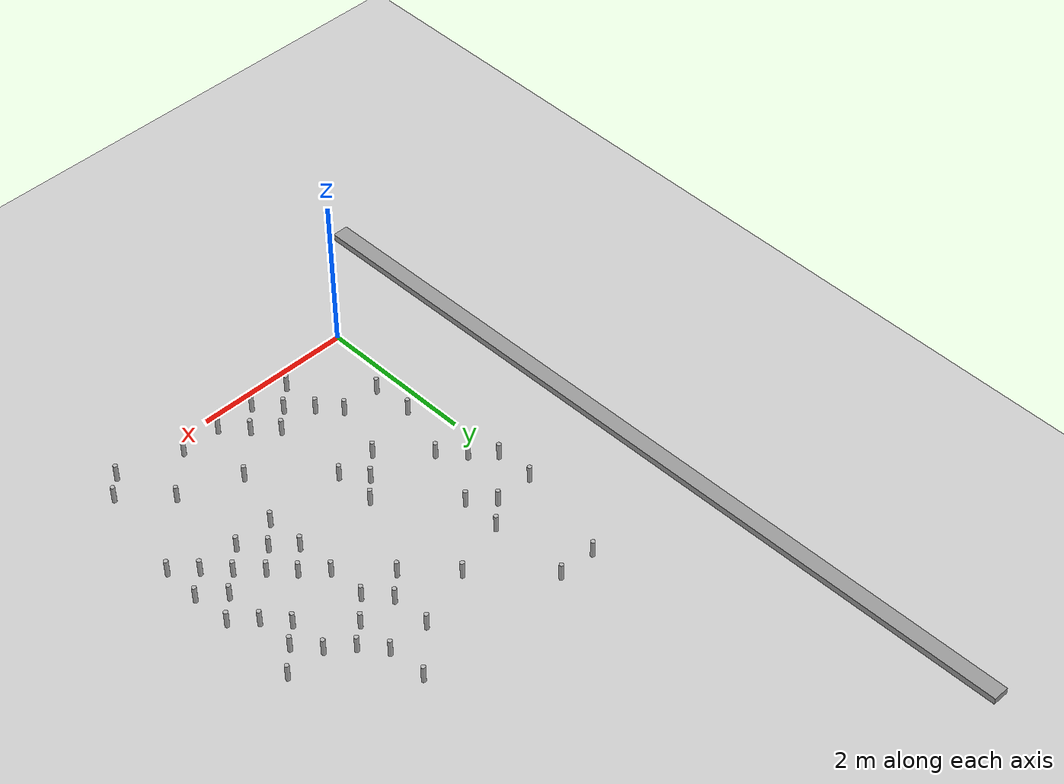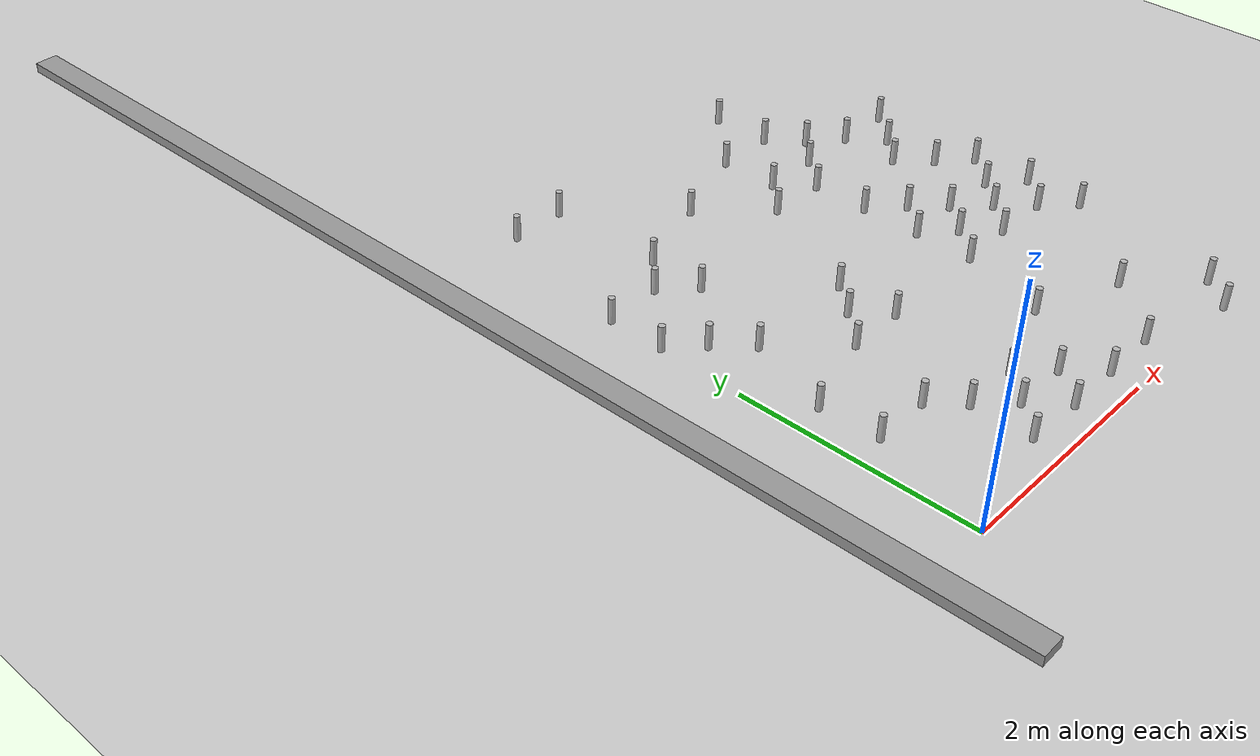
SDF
<sdf version="1.6">
 <world name="default">
  <model name="ground_plane">
   <static>1</static>
   <link name="link">
    <collision name="collision">
     <geometry><plane><normal>0 0 1</normal><size>100 100</size></plane></geometry>
     <surface><friction><ode><mu>100</mu><mu2>50</mu2></ode></friction></surface>
    </collision>
    <visual name="visual">
     <cast_shadows>0</cast_shadows>
     <geometry><plane><normal>0 0 1</normal><size>100 100</size></plane></geometry>
     <material>
      <script><uri>file://media/materials/scripts/gazebo.material</uri><name>Gazebo/Grey</name></script>
     </material>
    </visual>
   </link>
  </model>
  <model name="wall1">
   <static>1</static>
   <link name="link">
    <pose>0 0 0.42 0 -0 0</pose>
    <collision name="collision"><geometry><box><size>10 0.2 0.084</size></box></geometry></collision>
    <visual name="visual">
     <cast_shadows>0</cast_shadows>
     <geometry><box><size>10 0.2 0.084</size></box></geometry>
     <material>
      <script>
       <uri>model://grey_wall/materials/scripts</uri>
       <uri>model://grey_wall/materials/textures</uri>
       <name>vrc/grey_wall</name>
      </script>
     </material>
    </visual>
   </link>
   <pose>-1 4.0 0 0 -0 -1.55905</pose>
  </model>
  <model name="can1.01.72601428327">
   <link name="link">
    <pose>0 0 0.115 0 -0 0</pose>
    <inertial>
     <mass>0.39</mass>
     <inertia><ixx>0.00058</ixx><ixy>0</ixy><ixz>0</ixz><iyy>0.00058</iyy><iyz>0</iyz><izz>0.00019</izz></inertia>
    </inertial>
    <collision name="collision">
     <geometry><cylinder><radius>0.0275</radius><length>0.23</length></cylinder></geometry>
    </collision>
    <visual name="visual">
     <geometry><cylinder><radius>0.0275</radius><length>0.23</length></cylinder></geometry>
     <material>
      <script>
       <uri>model://beer/materials/scripts</uri>
       <uri>model://beer/materials/textures</uri>
       <name>Beer/Diffuse</name>
      </script>
     </material>
    </visual>
   </link>
   <pose>1.0 1.72601428327 -2e-06 1e-06 0 -9.5e-05</pose>
  </model>
  <model name="can1.752240229540.5">
   <link name="link">
    <pose>0 0 0.115 0 -0 0</pose>
    <inertial>
     <mass>0.39</mass>
     <inertia><ixx>0.00058</ixx><ixy>0</ixy><ixz>0</ixz><iyy>0.00058</iyy><iyz>0</iyz><izz>0.00019</izz></inertia>
    </inertial>
    <collision name="collision">
     <geometry><cylinder><radius>0.0275</radius><length>0.23</length></cylinder></geometry>
    </collision>
    <visual name="visual">
     <geometry><cylinder><radius>0.0275</radius><length>0.23</length></cylinder></geometry>
     <material>
      <script>
       <uri>model://beer/materials/scripts</uri>
       <uri>model://beer/materials/textures</uri>
       <name>Beer/Diffuse</name>
      </script>
     </material>
    </visual>
   </link>
   <pose>1.75224022954 0.5 -2e-06 1e-06 0 -9.5e-05</pose>
  </model>
  <model name="can3.50.240996124034">
   <link name="link">
    <pose>0 0 0.115 0 -0 0</pose>
    <inertial>
     <mass>0.39</mass>
     <inertia><ixx>0.00058</ixx><ixy>0</ixy><ixz>0</ixz><iyy>0.00058</iyy><iyz>0</iyz><izz>0.00019</izz></inertia>
    </inertial>
    <collision name="collision">
     <geometry><cylinder><radius>0.0275</radius><length>0.23</length></cylinder></geometry>
    </collision>
    <visual name="visual">
     <geometry><cylinder><radius>0.0275</radius><length>0.23</length></cylinder></geometry>
     <material>
      <script>
       <uri>model://beer/materials/scripts</uri>
       <uri>model://beer/materials/textures</uri>
       <name>Beer/Diffuse</name>
      </script>
     </material>
    </visual>
   </link>
   <pose>3.5 0.240996124034 -2e-06 1e-06 0 -9.5e-05</pose>
  </model>
  <model name="can1.00.244068706249">
   <link name="link">
    <pose>0 0 0.115 0 -0 0</pose>
    <inertial>
     <mass>0.39</mass>
     <inertia><ixx>0.00058</ixx><ixy>0</ixy><ixz>0</ixz><iyy>0.00058</iyy><iyz>0</iyz><izz>0.00019</izz></inertia>
    </inertial>
    <collision name="collision">
     <geometry><cylinder><radius>0.0275</radius><length>0.23</length></cylinder></geometry>
    </collision>
    <visual name="visual">
     <geometry><cylinder><radius>0.0275</radius><length>0.23</length></cylinder></geometry>
     <material>
      <script>
       <uri>model://beer/materials/scripts</uri>
       <uri>model://beer/materials/textures</uri>
       <name>Beer/Diffuse</name>
      </script>
     </material>
    </visual>
   </link>
   <pose>1.0 0.244068706249 -2e-06 1e-06 0 -9.5e-05</pose>
  </model>
  <model name="can0.7762787411673.5">
   <link name="link">
    <pose>0 0 0.115 0 -0 0</pose>
    <inertial>
     <mass>0.39</mass>
     <inertia><ixx>0.00058</ixx><ixy>0</ixy><ixz>0</ixz><iyy>0.00058</iyy><iyz>0</iyz><izz>0.00019</izz></inertia>
    </inertial>
    <collision name="collision">
     <geometry><cylinder><radius>0.0275</radius><length>0.23</length></cylinder></geometry>
    </collision>
    <visual name="visual">
     <geometry><cylinder><radius>0.0275</radius><length>0.23</length></cylinder></geometry>
     <material>
      <script>
       <uri>model://beer/materials/scripts</uri>
       <uri>model://beer/materials/textures</uri>
       <name>Beer/Diffuse</name>
      </script>
     </material>
    </visual>
   </link>
   <pose>0.776278741167 3.5 -2e-06 1e-06 0 -9.5e-05</pose>
  </model>
  <model name="can3.03.71716802057">
   <link name="link">
    <pose>0 0 0.115 0 -0 0</pose>
    <inertial>
     <mass>0.39</mass>
     <inertia><ixx>0.00058</ixx><ixy>0</ixy><ixz>0</ixz><iyy>0.00058</iyy><iyz>0</iyz><izz>0.00019</izz></inertia>
    </inertial>
    <collision name="collision">
     <geometry><cylinder><radius>0.0275</radius><length>0.23</length></cylinder></geometry>
    </collision>
    <visual name="visual">
     <geometry><cylinder><radius>0.0275</radius><length>0.23</length></cylinder></geometry>
     <material>
      <script>
       <uri>model://beer/materials/scripts</uri>
       <uri>model://beer/materials/textures</uri>
       <name>Beer/Diffuse</name>
      </script>
     </material>
    </visual>
   </link>
   <pose>3.0 3.71716802057 -2e-06 1e-06 0 -9.5e-05</pose>
  </model>
  <model name="can3.760414593241.5">
   <link name="link">
    <pose>0 0 0.115 0 -0 0</pose>
    <inertial>
     <mass>0.39</mass>
     <inertia><ixx>0.00058</ixx><ixy>0</ixy><ixz>0</ixz><iyy>0.00058</iyy><iyz>0</iyz><izz>0.00019</izz></inertia>
    </inertial>
    <collision name="collision">
     <geometry><cylinder><radius>0.0275</radius><length>0.23</length></cylinder></geometry>
    </collision>
    <visual name="visual">
     <geometry><cylinder><radius>0.0275</radius><length>0.23</length></cylinder></geometry>
     <material>
      <script>
       <uri>model://beer/materials/scripts</uri>
       <uri>model://beer/materials/textures</uri>
       <name>Beer/Diffuse</name>
      </script>
     </material>
    </visual>
   </link>
   <pose>3.76041459324 1.5 -2e-06 1e-06 0 -9.5e-05</pose>
  </model>
  <model name="can3.758568706892.5">
   <link name="link">
    <pose>0 0 0.115 0 -0 0</pose>
    <inertial>
     <mass>0.39</mass>
     <inertia><ixx>0.00058</ixx><ixy>0</ixy><ixz>0</ixz><iyy>0.00058</iyy><iyz>0</iyz><izz>0.00019</izz></inertia>
    </inertial>
    <collision name="collision">
     <geometry><cylinder><radius>0.0275</radius><length>0.23</length></cylinder></geometry>
    </collision>
    <visual name="visual">
     <geometry><cylinder><radius>0.0275</radius><length>0.23</length></cylinder></geometry>
     <material>
      <script>
       <uri>model://beer/materials/scripts</uri>
       <uri>model://beer/materials/textures</uri>
       <name>Beer/Diffuse</name>
      </script>
     </material>
    </visual>
   </link>
   <pose>3.75856870689 2.5 -2e-06 1e-06 0 -9.5e-05</pose>
  </model>
  <model name="can2.75748403822.0">
   <link name="link">
    <pose>0 0 0.115 0 -0 0</pose>
    <inertial>
     <mass>0.39</mass>
     <inertia><ixx>0.00058</ixx><ixy>0</ixy><ixz>0</ixz><iyy>0.00058</iyy><iyz>0</iyz><izz>0.00019</izz></inertia>
    </inertial>
    <collision name="collision">
     <geometry><cylinder><radius>0.0275</radius><length>0.23</length></cylinder></geometry>
    </collision>
    <visual name="visual">
     <geometry><cylinder><radius>0.0275</radius><length>0.23</length></cylinder></geometry>
     <material>
      <script>
       <uri>model://beer/materials/scripts</uri>
       <uri>model://beer/materials/textures</uri>
       <name>Beer/Diffuse</name>
      </script>
     </material>
    </visual>
   </link>
   <pose>2.7574840382 2.0 -2e-06 1e-06 0 -9.5e-05</pose>
  </model>
  <model name="can3.02.24979325446">
   <link name="link">
    <pose>0 0 0.115 0 -0 0</pose>
    <inertial>
     <mass>0.39</mass>
     <inertia><ixx>0.00058</ixx><ixy>0</ixy><ixz>0</ixz><iyy>0.00058</iyy><iyz>0</iyz><izz>0.00019</izz></inertia>
    </inertial>
    <collision name="collision">
     <geometry><cylinder><radius>0.0275</radius><length>0.23</length></cylinder></geometry>
    </collision>
    <visual name="visual">
     <geometry><cylinder><radius>0.0275</radius><length>0.23</length></cylinder></geometry>
     <material>
      <script>
       <uri>model://beer/materials/scripts</uri>
       <uri>model://beer/materials/textures</uri>
       <name>Beer/Diffuse</name>
      </script>
     </material>
    </visual>
   </link>
   <pose>3.0 2.24979325446 -2e-06 1e-06 0 -9.5e-05</pose>
  </model>
  <model name="can0.2849297225011.0">
   <link name="link">
    <pose>0 0 0.115 0 -0 0</pose>
    <inertial>
     <mass>0.39</mass>
     <inertia><ixx>0.00058</ixx><ixy>0</ixy><ixz>0</ixz><iyy>0.00058</iyy><iyz>0</iyz><izz>0.00019</izz></inertia>
    </inertial>
    <collision name="collision">
     <geometry><cylinder><radius>0.0275</radius><length>0.23</length></cylinder></geometry>
    </collision>
    <visual name="visual">
     <geometry><cylinder><radius>0.0275</radius><length>0.23</length></cylinder></geometry>
     <material>
      <script>
       <uri>model://beer/materials/scripts</uri>
       <uri>model://beer/materials/textures</uri>
       <name>Beer/Diffuse</name>
      </script>
     </material>
    </visual>
   </link>
   <pose>0.284929722501 1.0 -2e-06 1e-06 0 -9.5e-05</pose>
  </model>
  <model name="can3.780668719752.0">
   <link name="link">
    <pose>0 0 0.115 0 -0 0</pose>
    <inertial>
     <mass>0.39</mass>
     <inertia><ixx>0.00058</ixx><ixy>0</ixy><ixz>0</ixz><iyy>0.00058</iyy><iyz>0</iyz><izz>0.00019</izz></inertia>
    </inertial>
    <collision name="collision">
     <geometry><cylinder><radius>0.0275</radius><length>0.23</length></cylinder></geometry>
    </collision>
    <visual name="visual">
     <geometry><cylinder><radius>0.0275</radius><length>0.23</length></cylinder></geometry>
     <material>
      <script>
       <uri>model://beer/materials/scripts</uri>
       <uri>model://beer/materials/textures</uri>
       <name>Beer/Diffuse</name>
      </script>
     </material>
    </visual>
   </link>
   <pose>3.78066871975 2.0 -2e-06 1e-06 0 -9.5e-05</pose>
  </model>
  <model name="can2.52.22568749587">
   <link name="link">
    <pose>0 0 0.115 0 -0 0</pose>
    <inertial>
     <mass>0.39</mass>
     <inertia><ixx>0.00058</ixx><ixy>0</ixy><ixz>0</ixz><iyy>0.00058</iyy><iyz>0</iyz><izz>0.00019</izz></inertia>
    </inertial>
    <collision name="collision">
     <geometry><cylinder><radius>0.0275</radius><length>0.23</length></cylinder></geometry>
    </collision>
    <visual name="visual">
     <geometry><cylinder><radius>0.0275</radius><length>0.23</length></cylinder></geometry>
     <material>
      <script>
       <uri>model://beer/materials/scripts</uri>
       <uri>model://beer/materials/textures</uri>
       <name>Beer/Diffuse</name>
      </script>
     </material>
    </visual>
   </link>
   <pose>2.5 2.22568749587 -2e-06 1e-06 0 -9.5e-05</pose>
  </model>
  <model name="can3.27002835113.0">
   <link name="link">
    <pose>0 0 0.115 0 -0 0</pose>
    <inertial>
     <mass>0.39</mass>
     <inertia><ixx>0.00058</ixx><ixy>0</ixy><ixz>0</ixz><iyy>0.00058</iyy><iyz>0</iyz><izz>0.00019</izz></inertia>
    </inertial>
    <collision name="collision">
     <geometry><cylinder><radius>0.0275</radius><length>0.23</length></cylinder></geometry>
    </collision>
    <visual name="visual">
     <geometry><cylinder><radius>0.0275</radius><length>0.23</length></cylinder></geometry>
     <material>
      <script>
       <uri>model://beer/materials/scripts</uri>
       <uri>model://beer/materials/textures</uri>
       <name>Beer/Diffuse</name>
      </script>
     </material>
    </visual>
   </link>
   <pose>3.2700283511 3.0 -2e-06 1e-06 0 -9.5e-05</pose>
  </model>
  <model name="can3.767635746763.5">
   <link name="link">
    <pose>0 0 0.115 0 -0 0</pose>
    <inertial>
     <mass>0.39</mass>
     <inertia><ixx>0.00058</ixx><ixy>0</ixy><ixz>0</ixz><iyy>0.00058</iyy><iyz>0</iyz><izz>0.00019</izz></inertia>
    </inertial>
    <collision name="collision">
     <geometry><cylinder><radius>0.0275</radius><length>0.23</length></cylinder></geometry>
    </collision>
    <visual name="visual">
     <geometry><cylinder><radius>0.0275</radius><length>0.23</length></cylinder></geometry>
     <material>
      <script>
       <uri>model://beer/materials/scripts</uri>
       <uri>model://beer/materials/textures</uri>
       <name>Beer/Diffuse</name>
      </script>
     </material>
    </visual>
   </link>
   <pose>3.76763574676 3.5 -2e-06 1e-06 0 -9.5e-05</pose>
  </model>
  <model name="can1.50.743371191487">
   <link name="link">
    <pose>0 0 0.115 0 -0 0</pose>
    <inertial>
     <mass>0.39</mass>
     <inertia><ixx>0.00058</ixx><ixy>0</ixy><ixz>0</ixz><iyy>0.00058</iyy><iyz>0</iyz><izz>0.00019</izz></inertia>
    </inertial>
    <collision name="collision">
     <geometry><cylinder><radius>0.0275</radius><length>0.23</length></cylinder></geometry>
    </collision>
    <visual name="visual">
     <geometry><cylinder><radius>0.0275</radius><length>0.23</length></cylinder></geometry>
     <material>
      <script>
       <uri>model://beer/materials/scripts</uri>
       <uri>model://beer/materials/textures</uri>
       <name>Beer/Diffuse</name>
      </script>
     </material>
    </visual>
   </link>
   <pose>1.5 0.743371191487 -2e-06 1e-06 0 -9.5e-05</pose>
  </model>
  <model name="can3.51.74041672292">
   <link name="link">
    <pose>0 0 0.115 0 -0 0</pose>
    <inertial>
     <mass>0.39</mass>
     <inertia><ixx>0.00058</ixx><ixy>0</ixy><ixz>0</ixz><iyy>0.00058</iyy><iyz>0</iyz><izz>0.00019</izz></inertia>
    </inertial>
    <collision name="collision">
     <geometry><cylinder><radius>0.0275</radius><length>0.23</length></cylinder></geometry>
    </collision>
    <visual name="visual">
     <geometry><cylinder><radius>0.0275</radius><length>0.23</length></cylinder></geometry>
     <material>
      <script>
       <uri>model://beer/materials/scripts</uri>
       <uri>model://beer/materials/textures</uri>
       <name>Beer/Diffuse</name>
      </script>
     </material>
    </visual>
   </link>
   <pose>3.5 1.74041672292 -2e-06 1e-06 0 -9.5e-05</pose>
  </model>
  <model name="can0.759921904544.5">
   <link name="link">
    <pose>0 0 0.115 0 -0 0</pose>
    <inertial>
     <mass>0.39</mass>
     <inertia><ixx>0.00058</ixx><ixy>0</ixy><ixz>0</ixz><iyy>0.00058</iyy><iyz>0</iyz><izz>0.00019</izz></inertia>
    </inertial>
    <collision name="collision">
     <geometry><cylinder><radius>0.0275</radius><length>0.23</length></cylinder></geometry>
    </collision>
    <visual name="visual">
     <geometry><cylinder><radius>0.0275</radius><length>0.23</length></cylinder></geometry>
     <material>
      <script>
       <uri>model://beer/materials/scripts</uri>
       <uri>model://beer/materials/textures</uri>
       <name>Beer/Diffuse</name>
      </script>
     </material>
    </visual>
   </link>
   <pose>0.75992190454 4.5 -2e-06 1e-06 0 -9.5e-05</pose>
  </model>
  <model name="can1.52.24644685026">
   <link name="link">
    <pose>0 0 0.115 0 -0 0</pose>
    <inertial>
     <mass>0.39</mass>
     <inertia><ixx>0.00058</ixx><ixy>0</ixy><ixz>0</ixz><iyy>0.00058</iyy><iyz>0</iyz><izz>0.00019</izz></inertia>
    </inertial>
    <collision name="collision">
     <geometry><cylinder><radius>0.0275</radius><length>0.23</length></cylinder></geometry>
    </collision>
    <visual name="visual">
     <geometry><cylinder><radius>0.0275</radius><length>0.23</length></cylinder></geometry>
     <material>
      <script>
       <uri>model://beer/materials/scripts</uri>
       <uri>model://beer/materials/textures</uri>
       <name>Beer/Diffuse</name>
      </script>
     </material>
    </visual>
   </link>
   <pose>1.5 2.24644685026 -2e-06 1e-06 0 -9.5e-05</pose>
  </model>
  <model name="can1.53.73556121013">
   <link name="link">
    <pose>0 0 0.115 0 -0 0</pose>
    <inertial>
     <mass>0.39</mass>
     <inertia><ixx>0.00058</ixx><ixy>0</ixy><ixz>0</ixz><iyy>0.00058</iyy><iyz>0</iyz><izz>0.00019</izz></inertia>
    </inertial>
    <collision name="collision">
     <geometry><cylinder><radius>0.0275</radius><length>0.23</length></cylinder></geometry>
    </collision>
    <visual name="visual">
     <geometry><cylinder><radius>0.0275</radius><length>0.23</length></cylinder></geometry>
     <material>
      <script>
       <uri>model://beer/materials/scripts</uri>
       <uri>model://beer/materials/textures</uri>
       <name>Beer/Diffuse</name>
      </script>
     </material>
    </visual>
   </link>
   <pose>1.5 3.73556121013 -2e-06 1e-06 0 -9.5e-05</pose>
  </model>
  <model name="can2.51.72845033344">
   <link name="link">
    <pose>0 0 0.115 0 -0 0</pose>
    <inertial>
     <mass>0.39</mass>
     <inertia><ixx>0.00058</ixx><ixy>0</ixy><ixz>0</ixz><iyy>0.00058</iyy><iyz>0</iyz><izz>0.00019</izz></inertia>
    </inertial>
    <collision name="collision">
     <geometry><cylinder><radius>0.0275</radius><length>0.23</length></cylinder></geometry>
    </collision>
    <visual name="visual">
     <geometry><cylinder><radius>0.0275</radius><length>0.23</length></cylinder></geometry>
     <material>
      <script>
       <uri>model://beer/materials/scripts</uri>
       <uri>model://beer/materials/textures</uri>
       <name>Beer/Diffuse</name>
      </script>
     </material>
    </visual>
   </link>
   <pose>2.5 1.72845033344 -2e-06 1e-06 0 -9.5e-05</pose>
  </model>
  <model name="can1.51.72681077024">
   <link name="link">
    <pose>0 0 0.115 0 -0 0</pose>
    <inertial>
     <mass>0.39</mass>
     <inertia><ixx>0.00058</ixx><ixy>0</ixy><ixz>0</ixz><iyy>0.00058</iyy><iyz>0</iyz><izz>0.00019</izz></inertia>
    </inertial>
    <collision name="collision">
     <geometry><cylinder><radius>0.0275</radius><length>0.23</length></cylinder></geometry>
    </collision>
    <visual name="visual">
     <geometry><cylinder><radius>0.0275</radius><length>0.23</length></cylinder></geometry>
     <material>
      <script>
       <uri>model://beer/materials/scripts</uri>
       <uri>model://beer/materials/textures</uri>
       <name>Beer/Diffuse</name>
      </script>
     </material>
    </visual>
   </link>
   <pose>1.5 1.72681077024 -2e-06 1e-06 0 -9.5e-05</pose>
  </model>
  <model name="can2.50.224502131333">
   <link name="link">
    <pose>0 0 0.115 0 -0 0</pose>
    <inertial>
     <mass>0.39</mass>
     <inertia><ixx>0.00058</ixx><ixy>0</ixy><ixz>0</ixz><iyy>0.00058</iyy><iyz>0</iyz><izz>0.00019</izz></inertia>
    </inertial>
    <collision name="collision">
     <geometry><cylinder><radius>0.0275</radius><length>0.23</length></cylinder></geometry>
    </collision>
    <visual name="visual">
     <geometry><cylinder><radius>0.0275</radius><length>0.23</length></cylinder></geometry>
     <material>
      <script>
       <uri>model://beer/materials/scripts</uri>
       <uri>model://beer/materials/textures</uri>
       <name>Beer/Diffuse</name>
      </script>
     </material>
    </visual>
   </link>
   <pose>2.5 0.224502131333 -2e-06 1e-06 0 -9.5e-05</pose>
  </model>
  <model name="can2.26835808883.5">
   <link name="link">
    <pose>0 0 0.115 0 -0 0</pose>
    <inertial>
     <mass>0.39</mass>
     <inertia><ixx>0.00058</ixx><ixy>0</ixy><ixz>0</ixz><iyy>0.00058</iyy><iyz>0</iyz><izz>0.00019</izz></inertia>
    </inertial>
    <collision name="collision">
     <geometry><cylinder><radius>0.0275</radius><length>0.23</length></cylinder></geometry>
    </collision>
    <visual name="visual">
     <geometry><cylinder><radius>0.0275</radius><length>0.23</length></cylinder></geometry>
     <material>
      <script>
       <uri>model://beer/materials/scripts</uri>
       <uri>model://beer/materials/textures</uri>
       <name>Beer/Diffuse</name>
      </script>
     </material>
    </visual>
   </link>
   <pose>2.2683580888 3.5 -2e-06 1e-06 0 -9.5e-05</pose>
  </model>
  <model name="can3.276175202493.5">
   <link name="link">
    <pose>0 0 0.115 0 -0 0</pose>
    <inertial>
     <mass>0.39</mass>
     <inertia><ixx>0.00058</ixx><ixy>0</ixy><ixz>0</ixz><iyy>0.00058</iyy><iyz>0</iyz><izz>0.00019</izz></inertia>
    </inertial>
    <collision name="collision">
     <geometry><cylinder><radius>0.0275</radius><length>0.23</length></cylinder></geometry>
    </collision>
    <visual name="visual">
     <geometry><cylinder><radius>0.0275</radius><length>0.23</length></cylinder></geometry>
     <material>
      <script>
       <uri>model://beer/materials/scripts</uri>
       <uri>model://beer/materials/textures</uri>
       <name>Beer/Diffuse</name>
      </script>
     </material>
    </visual>
   </link>
   <pose>3.27617520249 3.5 -2e-06 1e-06 0 -9.5e-05</pose>
  </model>
  <model name="can2.266609053464.0">
   <link name="link">
    <pose>0 0 0.115 0 -0 0</pose>
    <inertial>
     <mass>0.39</mass>
     <inertia><ixx>0.00058</ixx><ixy>0</ixy><ixz>0</ixz><iyy>0.00058</iyy><iyz>0</iyz><izz>0.00019</izz></inertia>
    </inertial>
    <collision name="collision">
     <geometry><cylinder><radius>0.0275</radius><length>0.23</length></cylinder></geometry>
    </collision>
    <visual name="visual">
     <geometry><cylinder><radius>0.0275</radius><length>0.23</length></cylinder></geometry>
     <material>
      <script>
       <uri>model://beer/materials/scripts</uri>
       <uri>model://beer/materials/textures</uri>
       <name>Beer/Diffuse</name>
      </script>
     </material>
    </visual>
   </link>
   <pose>2.26660905346 4.0 -2e-06 1e-06 0 -9.5e-05</pose>
  </model>
  <model name="can3.52.23333592711">
   <link name="link">
    <pose>0 0 0.115 0 -0 0</pose>
    <inertial>
     <mass>0.39</mass>
     <inertia><ixx>0.00058</ixx><ixy>0</ixy><ixz>0</ixz><iyy>0.00058</iyy><iyz>0</iyz><izz>0.00019</izz></inertia>
    </inertial>
    <collision name="collision">
     <geometry><cylinder><radius>0.0275</radius><length>0.23</length></cylinder></geometry>
    </collision>
    <visual name="visual">
     <geometry><cylinder><radius>0.0275</radius><length>0.23</length></cylinder></geometry>
     <material>
      <script>
       <uri>model://beer/materials/scripts</uri>
       <uri>model://beer/materials/textures</uri>
       <name>Beer/Diffuse</name>
      </script>
     </material>
    </visual>
   </link>
   <pose>3.5 2.23333592711 -2e-06 1e-06 0 -9.5e-05</pose>
  </model>
  <model name="can2.52.73806839565">
   <link name="link">
    <pose>0 0 0.115 0 -0 0</pose>
    <inertial>
     <mass>0.39</mass>
     <inertia><ixx>0.00058</ixx><ixy>0</ixy><ixz>0</ixz><iyy>0.00058</iyy><iyz>0</iyz><izz>0.00019</izz></inertia>
    </inertial>
    <collision name="collision">
     <geometry><cylinder><radius>0.0275</radius><length>0.23</length></cylinder></geometry>
    </collision>
    <visual name="visual">
     <geometry><cylinder><radius>0.0275</radius><length>0.23</length></cylinder></geometry>
     <material>
      <script>
       <uri>model://beer/materials/scripts</uri>
       <uri>model://beer/materials/textures</uri>
       <name>Beer/Diffuse</name>
      </script>
     </material>
    </visual>
   </link>
   <pose>2.5 2.73806839565 -2e-06 1e-06 0 -9.5e-05</pose>
  </model>
  <model name="can3.256692397292.0">
   <link name="link">
    <pose>0 0 0.115 0 -0 0</pose>
    <inertial>
     <mass>0.39</mass>
     <inertia><ixx>0.00058</ixx><ixy>0</ixy><ixz>0</ixz><iyy>0.00058</iyy><iyz>0</iyz><izz>0.00019</izz></inertia>
    </inertial>
    <collision name="collision">
     <geometry><cylinder><radius>0.0275</radius><length>0.23</length></cylinder></geometry>
    </collision>
    <visual name="visual">
     <geometry><cylinder><radius>0.0275</radius><length>0.23</length></cylinder></geometry>
     <material>
      <script>
       <uri>model://beer/materials/scripts</uri>
       <uri>model://beer/materials/textures</uri>
       <name>Beer/Diffuse</name>
      </script>
     </material>
    </visual>
   </link>
   <pose>3.25669239729 2.0 -2e-06 1e-06 0 -9.5e-05</pose>
  </model>
  <model name="can1.260447536850.5">
   <link name="link">
    <pose>0 0 0.115 0 -0 0</pose>
    <inertial>
     <mass>0.39</mass>
     <inertia><ixx>0.00058</ixx><ixy>0</ixy><ixz>0</ixz><iyy>0.00058</iyy><iyz>0</iyz><izz>0.00019</izz></inertia>
    </inertial>
    <collision name="collision">
     <geometry><cylinder><radius>0.0275</radius><length>0.23</length></cylinder></geometry>
    </collision>
    <visual name="visual">
     <geometry><cylinder><radius>0.0275</radius><length>0.23</length></cylinder></geometry>
     <material>
      <script>
       <uri>model://beer/materials/scripts</uri>
       <uri>model://beer/materials/textures</uri>
       <name>Beer/Diffuse</name>
      </script>
     </material>
    </visual>
   </link>
   <pose>1.26044753685 0.5 -2e-06 1e-06 0 -9.5e-05</pose>
  </model>
  <model name="can2.78235476524.0">
   <link name="link">
    <pose>0 0 0.115 0 -0 0</pose>
    <inertial>
     <mass>0.39</mass>
     <inertia><ixx>0.00058</ixx><ixy>0</ixy><ixz>0</ixz><iyy>0.00058</iyy><iyz>0</iyz><izz>0.00019</izz></inertia>
    </inertial>
    <collision name="collision">
     <geometry><cylinder><radius>0.0275</radius><length>0.23</length></cylinder></geometry>
    </collision>
    <visual name="visual">
     <geometry><cylinder><radius>0.0275</radius><length>0.23</length></cylinder></geometry>
     <material>
      <script>
       <uri>model://beer/materials/scripts</uri>
       <uri>model://beer/materials/textures</uri>
       <name>Beer/Diffuse</name>
      </script>
     </material>
    </visual>
   </link>
   <pose>2.7823547652 4.0 -2e-06 1e-06 0 -9.5e-05</pose>
  </model>
  <model name="can0.2578871232041.5">
   <link name="link">
    <pose>0 0 0.115 0 -0 0</pose>
    <inertial>
     <mass>0.39</mass>
     <inertia><ixx>0.00058</ixx><ixy>0</ixy><ixz>0</ixz><iyy>0.00058</iyy><iyz>0</iyz><izz>0.00019</izz></inertia>
    </inertial>
    <collision name="collision">
     <geometry><cylinder><radius>0.0275</radius><length>0.23</length></cylinder></geometry>
    </collision>
    <visual name="visual">
     <geometry><cylinder><radius>0.0275</radius><length>0.23</length></cylinder></geometry>
     <material>
      <script>
       <uri>model://beer/materials/scripts</uri>
       <uri>model://beer/materials/textures</uri>
       <name>Beer/Diffuse</name>
      </script>
     </material>
    </visual>
   </link>
   <pose>0.257887123204 1.5 -2e-06 1e-06 0 -9.5e-05</pose>
  </model>
  <model name="can0.2830028080434.5">
   <link name="link">
    <pose>0 0 0.115 0 -0 0</pose>
    <inertial>
     <mass>0.39</mass>
     <inertia><ixx>0.00058</ixx><ixy>0</ixy><ixz>0</ixz><iyy>0.00058</iyy><iyz>0</iyz><izz>0.00019</izz></inertia>
    </inertial>
    <collision name="collision">
     <geometry><cylinder><radius>0.0275</radius><length>0.23</length></cylinder></geometry>
    </collision>
    <visual name="visual">
     <geometry><cylinder><radius>0.0275</radius><length>0.23</length></cylinder></geometry>
     <material>
      <script>
       <uri>model://beer/materials/scripts</uri>
       <uri>model://beer/materials/textures</uri>
       <name>Beer/Diffuse</name>
      </script>
     </material>
    </visual>
   </link>
   <pose>0.283002808043 4.5 -2e-06 1e-06 0 -9.5e-05</pose>
  </model>
  <model name="can2.53.22096439575">
   <link name="link">
    <pose>0 0 0.115 0 -0 0</pose>
    <inertial>
     <mass>0.39</mass>
     <inertia><ixx>0.00058</ixx><ixy>0</ixy><ixz>0</ixz><iyy>0.00058</iyy><iyz>0</iyz><izz>0.00019</izz></inertia>
    </inertial>
    <collision name="collision">
     <geometry><cylinder><radius>0.0275</radius><length>0.23</length></cylinder></geometry>
    </collision>
    <visual name="visual">
     <geometry><cylinder><radius>0.0275</radius><length>0.23</length></cylinder></geometry>
     <material>
      <script>
       <uri>model://beer/materials/scripts</uri>
       <uri>model://beer/materials/textures</uri>
       <name>Beer/Diffuse</name>
      </script>
     </material>
    </visual>
   </link>
   <pose>2.5 3.22096439575 -2e-06 1e-06 0 -9.5e-05</pose>
  </model>
  <model name="can1.272982050222.0">
   <link name="link">
    <pose>0 0 0.115 0 -0 0</pose>
    <inertial>
     <mass>0.39</mass>
     <inertia><ixx>0.00058</ixx><ixy>0</ixy><ixz>0</ixz><iyy>0.00058</iyy><iyz>0</iyz><izz>0.00019</izz></inertia>
    </inertial>
    <collision name="collision">
     <geometry><cylinder><radius>0.0275</radius><length>0.23</length></cylinder></geometry>
    </collision>
    <visual name="visual">
     <geometry><cylinder><radius>0.0275</radius><length>0.23</length></cylinder></geometry>
     <material>
      <script>
       <uri>model://beer/materials/scripts</uri>
       <uri>model://beer/materials/textures</uri>
       <name>Beer/Diffuse</name>
      </script>
     </material>
    </visual>
   </link>
   <pose>1.27298205022 2.0 -2e-06 1e-06 0 -9.5e-05</pose>
  </model>
  <model name="can0.7801369772341.0">
   <link name="link">
    <pose>0 0 0.115 0 -0 0</pose>
    <inertial>
     <mass>0.39</mass>
     <inertia><ixx>0.00058</ixx><ixy>0</ixy><ixz>0</ixz><iyy>0.00058</iyy><iyz>0</iyz><izz>0.00019</izz></inertia>
    </inertial>
    <collision name="collision">
     <geometry><cylinder><radius>0.0275</radius><length>0.23</length></cylinder></geometry>
    </collision>
    <visual name="visual">
     <geometry><cylinder><radius>0.0275</radius><length>0.23</length></cylinder></geometry>
     <material>
      <script>
       <uri>model://beer/materials/scripts</uri>
       <uri>model://beer/materials/textures</uri>
       <name>Beer/Diffuse</name>
      </script>
     </material>
    </visual>
   </link>
   <pose>0.780136977234 1.0 -2e-06 1e-06 0 -9.5e-05</pose>
  </model>
  <model name="can2.00.220210594485">
   <link name="link">
    <pose>0 0 0.115 0 -0 0</pose>
    <inertial>
     <mass>0.39</mass>
     <inertia><ixx>0.00058</ixx><ixy>0</ixy><ixz>0</ixz><iyy>0.00058</iyy><iyz>0</iyz><izz>0.00019</izz></inertia>
    </inertial>
    <collision name="collision">
     <geometry><cylinder><radius>0.0275</radius><length>0.23</length></cylinder></geometry>
    </collision>
    <visual name="visual">
     <geometry><cylinder><radius>0.0275</radius><length>0.23</length></cylinder></geometry>
     <material>
      <script>
       <uri>model://beer/materials/scripts</uri>
       <uri>model://beer/materials/textures</uri>
       <name>Beer/Diffuse</name>
      </script>
     </material>
    </visual>
   </link>
   <pose>2.0 0.220210594485 -2e-06 1e-06 0 -9.5e-05</pose>
  </model>
  <model name="can0.03.22506651003">
   <link name="link">
    <pose>0 0 0.115 0 -0 0</pose>
    <inertial>
     <mass>0.39</mass>
     <inertia><ixx>0.00058</ixx><ixy>0</ixy><ixz>0</ixz><iyy>0.00058</iyy><iyz>0</iyz><izz>0.00019</izz></inertia>
    </inertial>
    <collision name="collision">
     <geometry><cylinder><radius>0.0275</radius><length>0.23</length></cylinder></geometry>
    </collision>
    <visual name="visual">
     <geometry><cylinder><radius>0.0275</radius><length>0.23</length></cylinder></geometry>
     <material>
      <script>
       <uri>model://beer/materials/scripts</uri>
       <uri>model://beer/materials/textures</uri>
       <name>Beer/Diffuse</name>
      </script>
     </material>
    </visual>
   </link>
   <pose>0.0 3.22506651003 -2e-06 1e-06 0 -9.5e-05</pose>
  </model>
  <model name="can0.254153756062.5">
   <link name="link">
    <pose>0 0 0.115 0 -0 0</pose>
    <inertial>
     <mass>0.39</mass>
     <inertia><ixx>0.00058</ixx><ixy>0</ixy><ixz>0</ixz><iyy>0.00058</iyy><iyz>0</iyz><izz>0.00019</izz></inertia>
    </inertial>
    <collision name="collision">
     <geometry><cylinder><radius>0.0275</radius><length>0.23</length></cylinder></geometry>
    </collision>
    <visual name="visual">
     <geometry><cylinder><radius>0.0275</radius><length>0.23</length></cylinder></geometry>
     <material>
      <script>
       <uri>model://beer/materials/scripts</uri>
       <uri>model://beer/materials/textures</uri>
       <name>Beer/Diffuse</name>
      </script>
     </material>
    </visual>
   </link>
   <pose>0.25415375606 2.5 -2e-06 1e-06 0 -9.5e-05</pose>
  </model>
  <model name="can0.52.22676240398">
   <link name="link">
    <pose>0 0 0.115 0 -0 0</pose>
    <inertial>
     <mass>0.39</mass>
     <inertia><ixx>0.00058</ixx><ixy>0</ixy><ixz>0</ixz><iyy>0.00058</iyy><iyz>0</iyz><izz>0.00019</izz></inertia>
    </inertial>
    <collision name="collision">
     <geometry><cylinder><radius>0.0275</radius><length>0.23</length></cylinder></geometry>
    </collision>
    <visual name="visual">
     <geometry><cylinder><radius>0.0275</radius><length>0.23</length></cylinder></geometry>
     <material>
      <script>
       <uri>model://beer/materials/scripts</uri>
       <uri>model://beer/materials/textures</uri>
       <name>Beer/Diffuse</name>
      </script>
     </material>
    </visual>
   </link>
   <pose>0.5 2.22676240398 -2e-06 1e-06 0 -9.5e-05</pose>
  </model>
  <model name="can2.75902830013.5">
   <link name="link">
    <pose>0 0 0.115 0 -0 0</pose>
    <inertial>
     <mass>0.39</mass>
     <inertia><ixx>0.00058</ixx><ixy>0</ixy><ixz>0</ixz><iyy>0.00058</iyy><iyz>0</iyz><izz>0.00019</izz></inertia>
    </inertial>
    <collision name="collision">
     <geometry><cylinder><radius>0.0275</radius><length>0.23</length></cylinder></geometry>
    </collision>
    <visual name="visual">
     <geometry><cylinder><radius>0.0275</radius><length>0.23</length></cylinder></geometry>
     <material>
      <script>
       <uri>model://beer/materials/scripts</uri>
       <uri>model://beer/materials/textures</uri>
       <name>Beer/Diffuse</name>
      </script>
     </material>
    </visual>
   </link>
   <pose>2.7590283001 3.5 -2e-06 1e-06 0 -9.5e-05</pose>
  </model>
  <model name="can0.7642107637933.0">
   <link name="link">
    <pose>0 0 0.115 0 -0 0</pose>
    <inertial>
     <mass>0.39</mass>
     <inertia><ixx>0.00058</ixx><ixy>0</ixy><ixz>0</ixz><iyy>0.00058</iyy><iyz>0</iyz><izz>0.00019</izz></inertia>
    </inertial>
    <collision name="collision">
     <geometry><cylinder><radius>0.0275</radius><length>0.23</length></cylinder></geometry>
    </collision>
    <visual name="visual">
     <geometry><cylinder><radius>0.0275</radius><length>0.23</length></cylinder></geometry>
     <material>
      <script>
       <uri>model://beer/materials/scripts</uri>
       <uri>model://beer/materials/textures</uri>
       <name>Beer/Diffuse</name>
      </script>
     </material>
    </visual>
   </link>
   <pose>0.764210763793 3.0 -2e-06 1e-06 0 -9.5e-05</pose>
  </model>
  <model name="can3.01.74808966133">
   <link name="link">
    <pose>0 0 0.115 0 -0 0</pose>
    <inertial>
     <mass>0.39</mass>
     <inertia><ixx>0.00058</ixx><ixy>0</ixy><ixz>0</ixz><iyy>0.00058</iyy><iyz>0</iyz><izz>0.00019</izz></inertia>
    </inertial>
    <collision name="collision">
     <geometry><cylinder><radius>0.0275</radius><length>0.23</length></cylinder></geometry>
    </collision>
    <visual name="visual">
     <geometry><cylinder><radius>0.0275</radius><length>0.23</length></cylinder></geometry>
     <material>
      <script>
       <uri>model://beer/materials/scripts</uri>
       <uri>model://beer/materials/textures</uri>
       <name>Beer/Diffuse</name>
      </script>
     </material>
    </visual>
   </link>
   <pose>3.0 1.74808966133 -2e-06 1e-06 0 -9.5e-05</pose>
  </model>
  <model name="can2.770260997284.5">
   <link name="link">
    <pose>0 0 0.115 0 -0 0</pose>
    <inertial>
     <mass>0.39</mass>
     <inertia><ixx>0.00058</ixx><ixy>0</ixy><ixz>0</ixz><iyy>0.00058</iyy><iyz>0</iyz><izz>0.00019</izz></inertia>
    </inertial>
    <collision name="collision">
     <geometry><cylinder><radius>0.0275</radius><length>0.23</length></cylinder></geometry>
    </collision>
    <visual name="visual">
     <geometry><cylinder><radius>0.0275</radius><length>0.23</length></cylinder></geometry>
     <material>
      <script>
       <uri>model://beer/materials/scripts</uri>
       <uri>model://beer/materials/textures</uri>
       <name>Beer/Diffuse</name>
      </script>
     </material>
    </visual>
   </link>
   <pose>2.77026099728 4.5 -2e-06 1e-06 0 -9.5e-05</pose>
  </model>
  <model name="can3.53.22127853405">
   <link name="link">
    <pose>0 0 0.115 0 -0 0</pose>
    <inertial>
     <mass>0.39</mass>
     <inertia><ixx>0.00058</ixx><ixy>0</ixy><ixz>0</ixz><iyy>0.00058</iyy><iyz>0</iyz><izz>0.00019</izz></inertia>
    </inertial>
    <collision name="collision">
     <geometry><cylinder><radius>0.0275</radius><length>0.23</length></cylinder></geometry>
    </collision>
    <visual name="visual">
     <geometry><cylinder><radius>0.0275</radius><length>0.23</length></cylinder></geometry>
     <material>
      <script>
       <uri>model://beer/materials/scripts</uri>
       <uri>model://beer/materials/textures</uri>
       <name>Beer/Diffuse</name>
      </script>
     </material>
    </visual>
   </link>
   <pose>3.5 3.22127853405 -2e-06 1e-06 0 -9.5e-05</pose>
  </model>
  <model name="can3.52.73310800335">
   <link name="link">
    <pose>0 0 0.115 0 -0 0</pose>
    <inertial>
     <mass>0.39</mass>
     <inertia><ixx>0.00058</ixx><ixy>0</ixy><ixz>0</ixz><iyy>0.00058</iyy><iyz>0</iyz><izz>0.00019</izz></inertia>
    </inertial>
    <collision name="collision">
     <geometry><cylinder><radius>0.0275</radius><length>0.23</length></cylinder></geometry>
    </collision>
    <visual name="visual">
     <geometry><cylinder><radius>0.0275</radius><length>0.23</length></cylinder></geometry>
     <material>
      <script>
       <uri>model://beer/materials/scripts</uri>
       <uri>model://beer/materials/textures</uri>
       <name>Beer/Diffuse</name>
      </script>
     </material>
    </visual>
   </link>
   <pose>3.5 2.73310800335 -2e-06 1e-06 0 -9.5e-05</pose>
  </model>
  <model name="can1.50.217335936826">
   <link name="link">
    <pose>0 0 0.115 0 -0 0</pose>
    <inertial>
     <mass>0.39</mass>
     <inertia><ixx>0.00058</ixx><ixy>0</ixy><ixz>0</ixz><iyy>0.00058</iyy><iyz>0</iyz><izz>0.00019</izz></inertia>
    </inertial>
    <collision name="collision">
     <geometry><cylinder><radius>0.0275</radius><length>0.23</length></cylinder></geometry>
    </collision>
    <visual name="visual">
     <geometry><cylinder><radius>0.0275</radius><length>0.23</length></cylinder></geometry>
     <material>
      <script>
       <uri>model://beer/materials/scripts</uri>
       <uri>model://beer/materials/textures</uri>
       <name>Beer/Diffuse</name>
      </script>
     </material>
    </visual>
   </link>
   <pose>1.5 0.217335936826 -2e-06 1e-06 0 -9.5e-05</pose>
  </model>
  <model name="can3.27632089680.0">
   <link name="link">
    <pose>0 0 0.115 0 -0 0</pose>
    <inertial>
     <mass>0.39</mass>
     <inertia><ixx>0.00058</ixx><ixy>0</ixy><ixz>0</ixz><iyy>0.00058</iyy><iyz>0</iyz><izz>0.00019</izz></inertia>
    </inertial>
    <collision name="collision">
     <geometry><cylinder><radius>0.0275</radius><length>0.23</length></cylinder></geometry>
    </collision>
    <visual name="visual">
     <geometry><cylinder><radius>0.0275</radius><length>0.23</length></cylinder></geometry>
     <material>
      <script>
       <uri>model://beer/materials/scripts</uri>
       <uri>model://beer/materials/textures</uri>
       <name>Beer/Diffuse</name>
      </script>
     </material>
    </visual>
   </link>
   <pose>3.2763208968 0.0 -2e-06 1e-06 0 -9.5e-05</pose>
  </model>
  <model name="can3.00.720000940066">
   <link name="link">
    <pose>0 0 0.115 0 -0 0</pose>
    <inertial>
     <mass>0.39</mass>
     <inertia><ixx>0.00058</ixx><ixy>0</ixy><ixz>0</ixz><iyy>0.00058</iyy><iyz>0</iyz><izz>0.00019</izz></inertia>
    </inertial>
    <collision name="collision">
     <geometry><cylinder><radius>0.0275</radius><length>0.23</length></cylinder></geometry>
    </collision>
    <visual name="visual">
     <geometry><cylinder><radius>0.0275</radius><length>0.23</length></cylinder></geometry>
     <material>
      <script>
       <uri>model://beer/materials/scripts</uri>
       <uri>model://beer/materials/textures</uri>
       <name>Beer/Diffuse</name>
      </script>
     </material>
    </visual>
   </link>
   <pose>3.0 0.720000940066 -2e-06 1e-06 0 -9.5e-05</pose>
  </model>
  <model name="can2.03.23873944513">
   <link name="link">
    <pose>0 0 0.115 0 -0 0</pose>
    <inertial>
     <mass>0.39</mass>
     <inertia><ixx>0.00058</ixx><ixy>0</ixy><ixz>0</ixz><iyy>0.00058</iyy><iyz>0</iyz><izz>0.00019</izz></inertia>
    </inertial>
    <collision name="collision">
     <geometry><cylinder><radius>0.0275</radius><length>0.23</length></cylinder></geometry>
    </collision>
    <visual name="visual">
     <geometry><cylinder><radius>0.0275</radius><length>0.23</length></cylinder></geometry>
     <material>
      <script>
       <uri>model://beer/materials/scripts</uri>
       <uri>model://beer/materials/textures</uri>
       <name>Beer/Diffuse</name>
      </script>
     </material>
    </visual>
   </link>
   <pose>2.0 3.23873944513 -2e-06 1e-06 0 -9.5e-05</pose>
  </model>
  <model name="can2.263176953531.0">
   <link name="link">
    <pose>0 0 0.115 0 -0 0</pose>
    <inertial>
     <mass>0.39</mass>
     <inertia><ixx>0.00058</ixx><ixy>0</ixy><ixz>0</ixz><iyy>0.00058</iyy><iyz>0</iyz><izz>0.00019</izz></inertia>
    </inertial>
    <collision name="collision">
     <geometry><cylinder><radius>0.0275</radius><length>0.23</length></cylinder></geometry>
    </collision>
    <visual name="visual">
     <geometry><cylinder><radius>0.0275</radius><length>0.23</length></cylinder></geometry>
     <material>
      <script>
       <uri>model://beer/materials/scripts</uri>
       <uri>model://beer/materials/textures</uri>
       <name>Beer/Diffuse</name>
      </script>
     </material>
    </visual>
   </link>
   <pose>2.26317695353 1.0 -2e-06 1e-06 0 -9.5e-05</pose>
  </model>
  <model name="can0.53.24102454678">
   <link name="link">
    <pose>0 0 0.115 0 -0 0</pose>
    <inertial>
     <mass>0.39</mass>
     <inertia><ixx>0.00058</ixx><ixy>0</ixy><ixz>0</ixz><iyy>0.00058</iyy><iyz>0</iyz><izz>0.00019</izz></inertia>
    </inertial>
    <collision name="collision">
     <geometry><cylinder><radius>0.0275</radius><length>0.23</length></cylinder></geometry>
    </collision>
    <visual name="visual">
     <geometry><cylinder><radius>0.0275</radius><length>0.23</length></cylinder></geometry>
     <material>
      <script>
       <uri>model://beer/materials/scripts</uri>
       <uri>model://beer/materials/textures</uri>
       <name>Beer/Diffuse</name>
      </script>
     </material>
    </visual>
   </link>
   <pose>0.5 3.24102454678 -2e-06 1e-06 0 -9.5e-05</pose>
  </model>
  <model name="can1.00.748670242981">
   <link name="link">
    <pose>0 0 0.115 0 -0 0</pose>
    <inertial>
     <mass>0.39</mass>
     <inertia><ixx>0.00058</ixx><ixy>0</ixy><ixz>0</ixz><iyy>0.00058</iyy><iyz>0</iyz><izz>0.00019</izz></inertia>
    </inertial>
    <collision name="collision">
     <geometry><cylinder><radius>0.0275</radius><length>0.23</length></cylinder></geometry>
    </collision>
    <visual name="visual">
     <geometry><cylinder><radius>0.0275</radius><length>0.23</length></cylinder></geometry>
     <material>
      <script>
       <uri>model://beer/materials/scripts</uri>
       <uri>model://beer/materials/textures</uri>
       <name>Beer/Diffuse</name>
      </script>
     </material>
    </visual>
   </link>
   <pose>1.0 0.748670242981 -2e-06 1e-06 0 -9.5e-05</pose>
  </model>
  <model name="can0.02.73446739194">
   <link name="link">
    <pose>0 0 0.115 0 -0 0</pose>
    <inertial>
     <mass>0.39</mass>
     <inertia><ixx>0.00058</ixx><ixy>0</ixy><ixz>0</ixz><iyy>0.00058</iyy><iyz>0</iyz><izz>0.00019</izz></inertia>
    </inertial>
    <collision name="collision">
     <geometry><cylinder><radius>0.0275</radius><length>0.23</length></cylinder></geometry>
    </collision>
    <visual name="visual">
     <geometry><cylinder><radius>0.0275</radius><length>0.23</length></cylinder></geometry>
     <material>
      <script>
       <uri>model://beer/materials/scripts</uri>
       <uri>model://beer/materials/textures</uri>
       <name>Beer/Diffuse</name>
      </script>
     </material>
    </visual>
   </link>
   <pose>0.0 2.73446739194 -2e-06 1e-06 0 -9.5e-05</pose>
  </model>
  <model name="can2.764250759942.5">
   <link name="link">
    <pose>0 0 0.115 0 -0 0</pose>
    <inertial>
     <mass>0.39</mass>
     <inertia><ixx>0.00058</ixx><ixy>0</ixy><ixz>0</ixz><iyy>0.00058</iyy><iyz>0</iyz><izz>0.00019</izz></inertia>
    </inertial>
    <collision name="collision">
     <geometry><cylinder><radius>0.0275</radius><length>0.23</length></cylinder></geometry>
    </collision>
    <visual name="visual">
     <geometry><cylinder><radius>0.0275</radius><length>0.23</length></cylinder></geometry>
     <material>
      <script>
       <uri>model://beer/materials/scripts</uri>
       <uri>model://beer/materials/textures</uri>
       <name>Beer/Diffuse</name>
      </script>
     </material>
    </visual>
   </link>
   <pose>2.76425075994 2.5 -2e-06 1e-06 0 -9.5e-05</pose>
  </model>
 </world>
</sdf>
